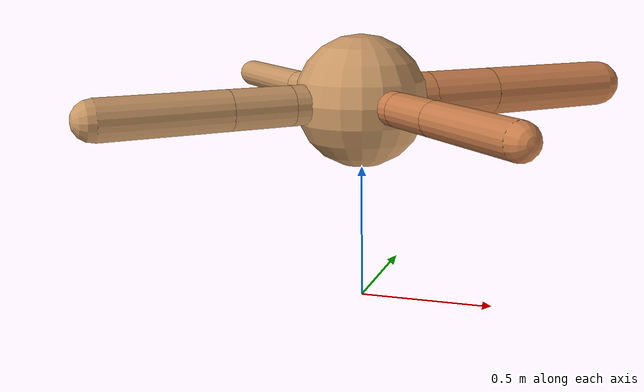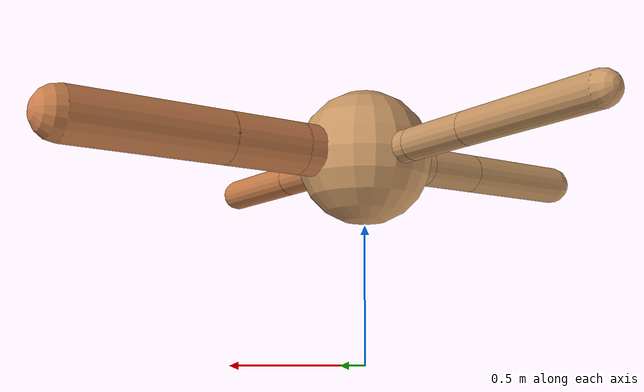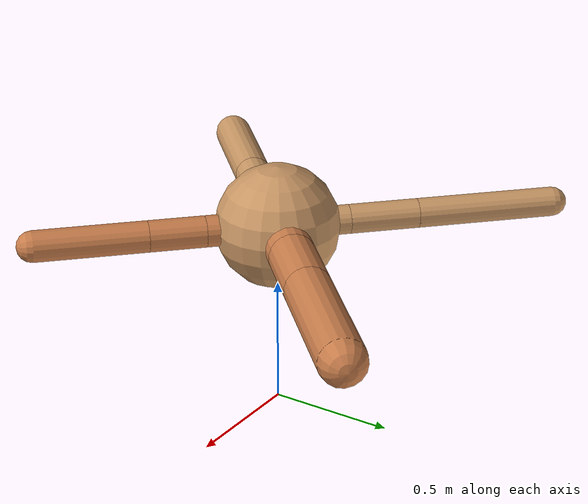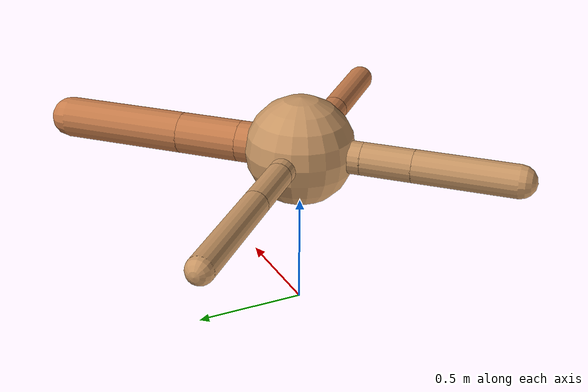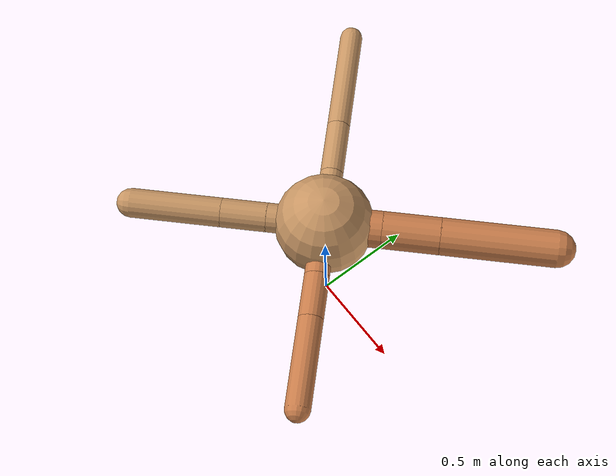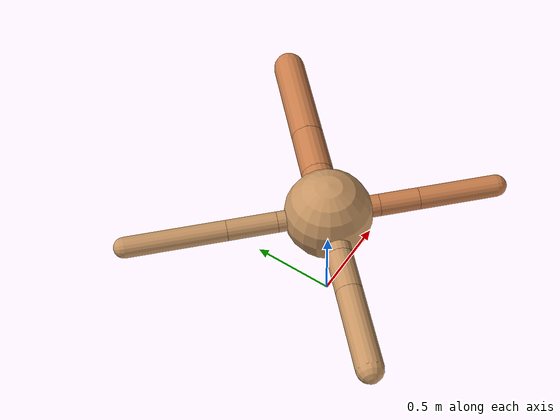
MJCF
<?xml version="1.0" ?>
<mujoco model="ant">

	<compiler angle="degree" coordinate="local" inertiafromgeom="true"/>

	<option integrator="RK4" timestep="0.01"/>

	<custom>

		<numeric data="0.0 0.0 0.55 1.0 0.0 0.0 0.0 0.0 1.0 0.0 -1.0 0.0 -1.0 0.0 1.0" name="init_qpos"/>

	</custom>

	<default>

		<joint armature="1" damping="1" limited="true"/>

		<geom conaffinity="0" condim="3" density="5.0" friction="1.5 0.1 0.1" margin="0.01" rgba="0.8 0.6 0.4 1"/>

	</default>

	<worldbody>

		<body name="torso" pos="0 0 0.75">

			<geom name="torso_geom" pos="0 0 0" size="0.24536662807734808" type="sphere"/>

			<!--joint armature="0" damping="0" limited="false" margin="0.01" name="root" pos="0 0 0" type="free"/-->

			<body name="front_left_leg" pos="0 0 0">

				<geom fromto="0 0 0 0.2 0.2 0" name="aux_1_geom" size="0.09235917009069457" type="capsule" rgba=".8 .5 .3 1"/>

				<body name="aux_1" pos="0.2 0.2 0">

					<joint axis="0 0 1" name="hip_1" pos="0.0 0.0 0.0" range="-40 40" type="hinge"/>

					<geom fromto="0 0 0 0.20061479470536991 0.20061479470536991 0" name="left_leg_geom" size="0.09235917009069457" type="capsule" rgba=".8 .5 .3 1"/>

					<body pos="0.20061479470536991 0.20061479470536991 0" name="front_left_foot">

						<joint axis="-1 1 0" name="ankle_1" pos="0.0 0.0 0.0" range="30 100" type="hinge"/>

						<geom fromto="0 0 0 0.40122958941073983 0.40122958941073983 0" name="left_ankle_geom" size="0.09235917009069457" type="capsule" rgba=".8 .5 .3 1"/>

					</body>

				</body>

			</body>

			<body name="front_right_leg" pos="0 0 0">

				<geom fromto="0 0 0 -0.2 0.2 0" name="aux_2_geom" size="0.05760974430179925" type="capsule"/>

				<body name="aux_2" pos="-0.2 0.2 0">

					<joint axis="0 0 1" name="hip_2" pos="0.0 0.0 0.0" range="-40 40" type="hinge"/>

					<geom fromto="0 0 0 -0.19427786474047945 0.19427786474047945 0" name="right_leg_geom" size="0.05760974430179925" type="capsule"/>

					<body pos="-0.19427786474047945 0.19427786474047945 0" name="front_right_foot">

						<joint axis="1 1 0" name="ankle_2" pos="0.0 0.0 0.0" range="-100 -30" type="hinge"/>

						<geom fromto="0 0 0 -0.3885557294809589 0.3885557294809589 0" name="right_ankle_geom" size="0.05760974430179925" type="capsule"/>

					</body>

				</body>

			</body>

			<body name="left_back_leg" pos="0 0 0">

				<geom fromto="0 0 0 -0.2 -0.2 0" name="aux_3_geom" size="0.07254596729914775" type="capsule"/>

				<body name="aux_3" pos="-0.2 -0.2 0">

					<joint axis="0 0 1" name="hip_3" pos="0.0 0.0 0.0" range="-40 40" type="hinge"/>

					<geom fromto="0 0 0 -0.15942324054163182 -0.15942324054163182 0" name="back_leg_geom" size="0.07254596729914775" type="capsule"/>

					<body pos="-0.15942324054163182 -0.15942324054163182 0" name="left_back_foot">

						<joint axis="-1 1 0" name="ankle_3" pos="0.0 0.0 0.0" range="-100 -30" type="hinge"/>

						<geom fromto="0 0 0 -0.31884648108326363 -0.31884648108326363 0" name="third_ankle_geom" size="0.07254596729914775" type="capsule"/>

					</body>

				</body>

			</body>

			<body name="right_back_leg" pos="0 0 0">

				<geom fromto="0 0 0 0.2 -0.2 0" name="aux_4_geom" size="0.061670792456361" type="capsule" rgba=".8 .5 .3 1"/>

				<body name="aux_4" pos="0.2 -0.2 0">

					<joint axis="0 0 1" name="hip_4" pos="0.0 0.0 0.0" range="-40 40" type="hinge"/>

					<geom fromto="0 0 0 0.15745904725855142 -0.15745904725855142 0" name="rightback_leg_geom" size="0.061670792456361" type="capsule" rgba=".8 .5 .3 1"/>

					<body pos="0.15745904725855142 -0.15745904725855142 0" name="right_back_foot">

						<joint axis="1 1 0" name="ankle_4" pos="0.0 0.0 0.0" range="30 100" type="hinge"/>

						<geom fromto="0 0 0 0.31491809451710284 -0.31491809451710284 0" name="fourth_ankle_geom" size="0.061670792456361" type="capsule" rgba=".8 .5 .3 1"/>

					</body>

				</body>

			</body>

		</body>

	</worldbody>

	<actuator>

		<motor ctrllimited="true" ctrlrange="-1.0 1.0" joint="hip_4" gear="150"/>

		<motor ctrllimited="true" ctrlrange="-1.0 1.0" joint="ankle_4" gear="150"/>

		<motor ctrllimited="true" ctrlrange="-1.0 1.0" joint="hip_1" gear="150"/>

		<motor ctrllimited="true" ctrlrange="-1.0 1.0" joint="ankle_1" gear="150"/>

		<motor ctrllimited="true" ctrlrange="-1.0 1.0" joint="hip_2" gear="150"/>

		<motor ctrllimited="true" ctrlrange="-1.0 1.0" joint="ankle_2" gear="150"/>

		<motor ctrllimited="true" ctrlrange="-1.0 1.0" joint="hip_3" gear="150"/>

		<motor ctrllimited="true" ctrlrange="-1.0 1.0" joint="ankle_3" gear="150"/>

	</actuator>

</mujoco>
